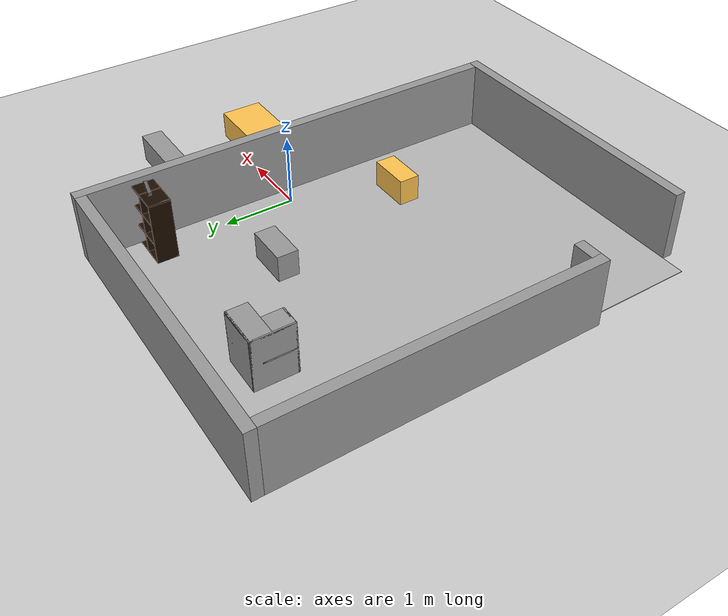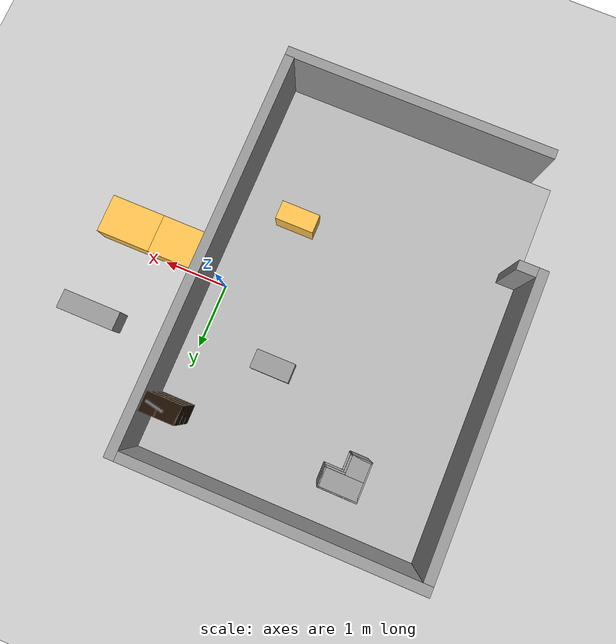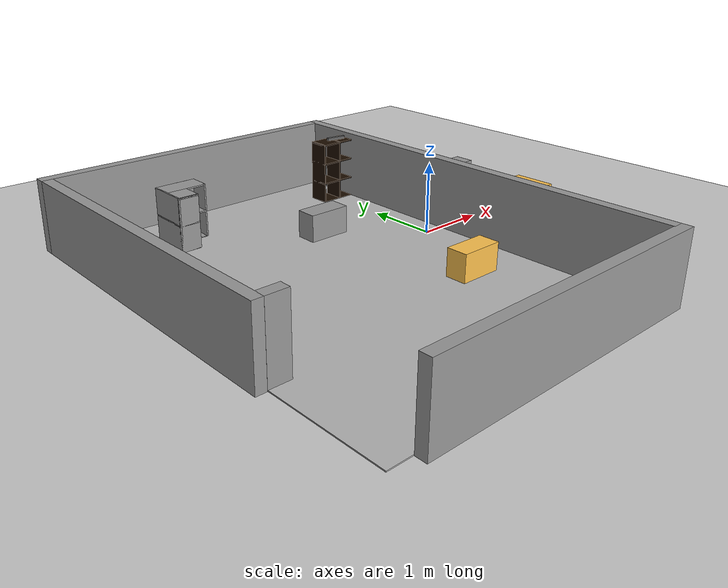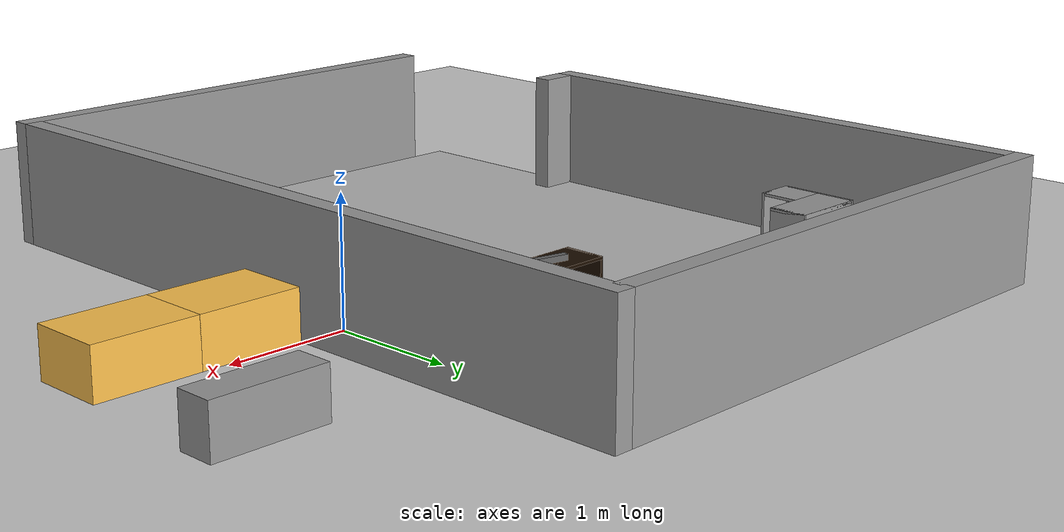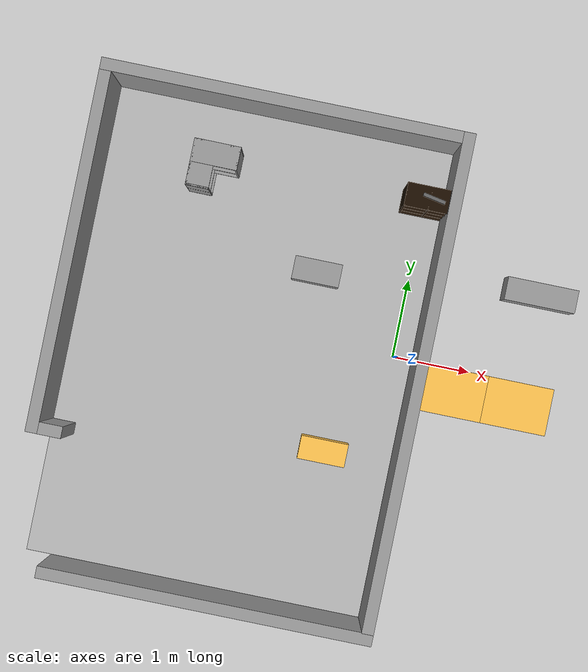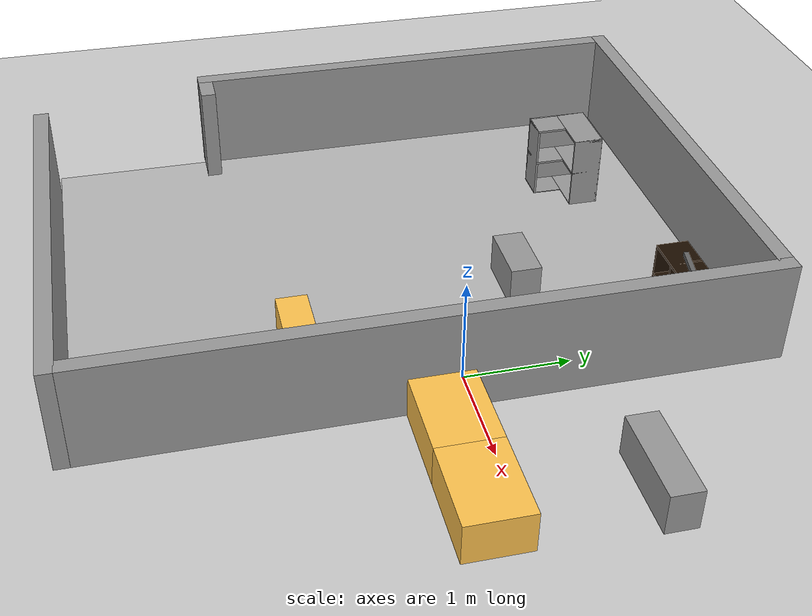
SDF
<sdf version="1.5">
 <world name="default">
  <plugin name="gazebo_ros_state" filename="libgazebo_ros_state.so">
   <ros><namespace>/gazebo</namespace><argument>model_states:=model_states</argument></ros>
   <update_rate>1.0</update_rate>
  </plugin>
  <scene><shadows>true</shadows></scene>
  <light name="sun" type="directional">
   <pose>0 0 10 0 -0 0</pose>
   <diffuse>0.8 0.8 0.8 1</diffuse>
   <specular>0.1 0.1 0.1 1</specular>
   <attenuation>
    <range>1000</range>
    <constant>0.9</constant>
    <linear>0.01</linear>
    <quadratic>0.001</quadratic>
   </attenuation>
   <direction>-0.5 0.5 -1</direction>
  </light>
  <physics type="ode">
   <max_step_size>0.001</max_step_size>
   <real_time_factor>1</real_time_factor>
   <real_time_update_rate>1000</real_time_update_rate>
   <gravity>0 0 -9.8</gravity>
  </physics>
  <include><uri>model://ground_plane</uri></include>
  <include>
   <uri>model://Workshop</uri>
   <pose>-1.936710 -0.343286 0.013 0 0 -1.57</pose>
   <uri>model://Box_15x30</uri>
  </include>
  <include><pose>1.636 -0.3 0.013 0 0 0</pose><uri>model://Box_33x15</uri></include>
  <include><pose>0.8 -0.3 0.013 0 0 0</pose><uri>model://Box_33x15</uri></include>
  <include><pose>1.658951 1.141109 0.013 0 0 0</pose><uri>model://Box_36x15W</uri></include>
  <include><pose>0 1.986729 0.013002 0 0 0</pose><uri>model://6_Cube_StorageE</uri></include>
  <include><pose>-0.653226 -1.356719 0.013 0 0 0</pose><uri>model://Box_24x15M</uri></include>
  <include><pose>-1.184366 0.857670 0.013 0 0 0</pose><uri>model://Box_24x15W</uri></include>
  <include>
   <pose>-2.710050 1.858030 0.013 0 0 -1.574973</pose>
   <uri>model://Wall_Cabinet_Coin_24x30W</uri>
  </include>
  <include><pose>0.0443 1.991597 0.947936 0.194664 1.558386 0.000047</pose><uri>model://pole</uri></include>
 </world>
</sdf>
